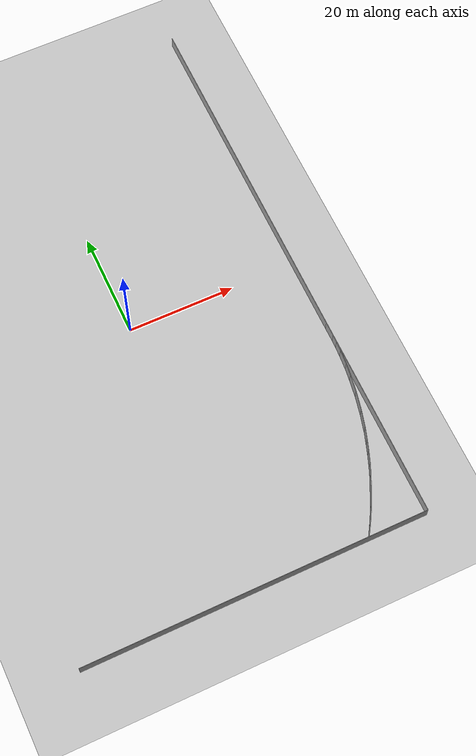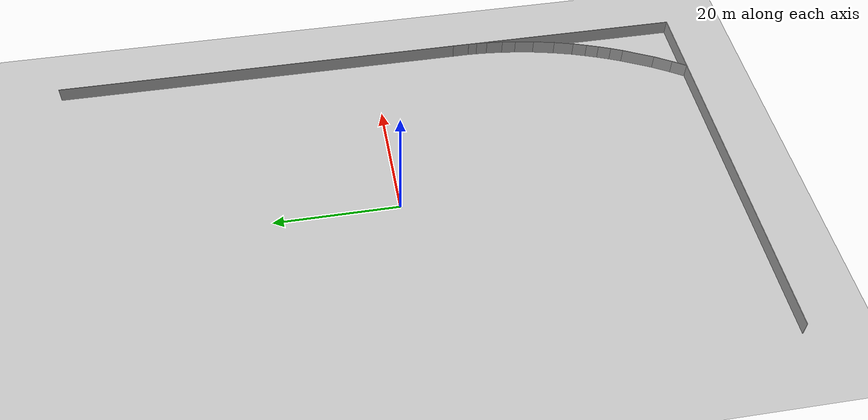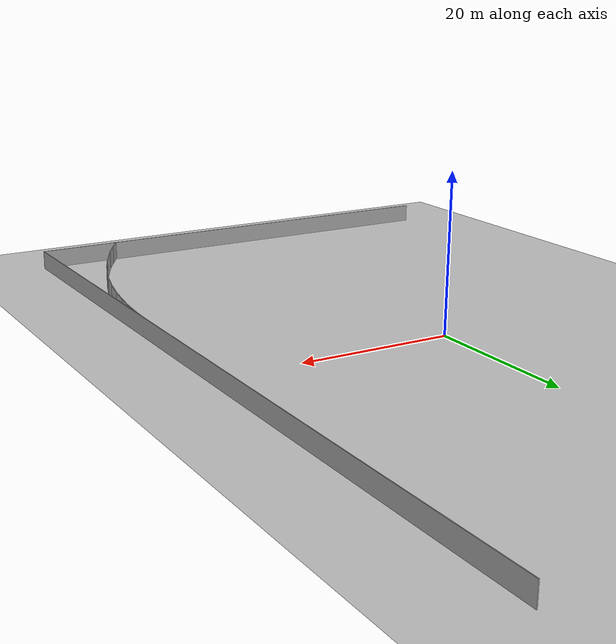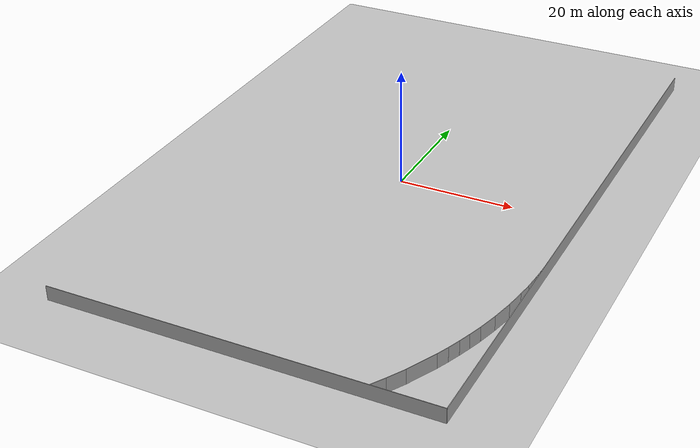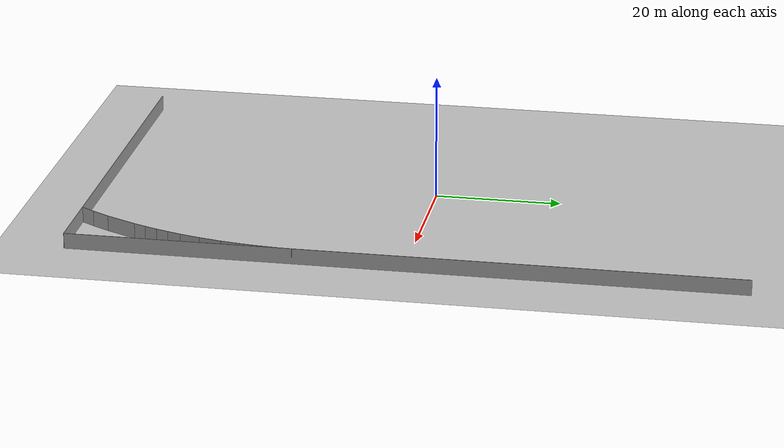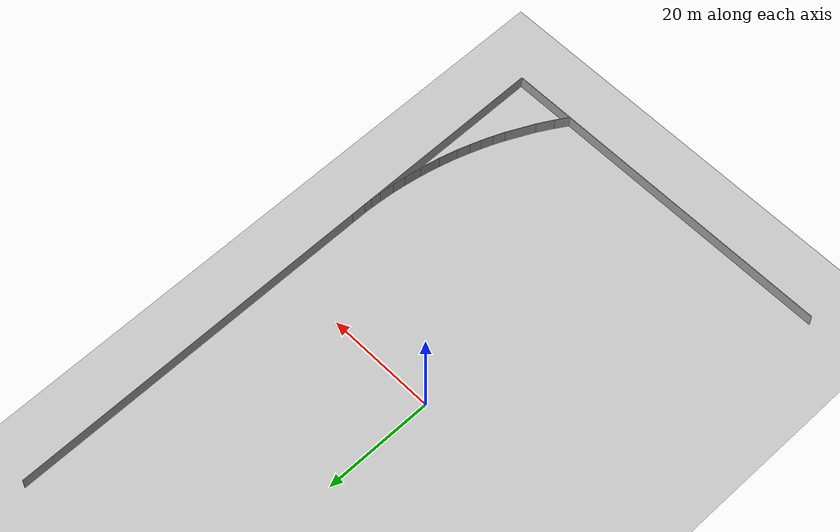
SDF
<sdf version="1.6">
 <world name="default">
  <model name="ground_plane">
   <static>1</static>
   <link name="link">
    <collision name="collision">
     <geometry><plane><normal>0 0 1</normal><size>100 100</size></plane></geometry>
     <surface><friction><ode><mu>100</mu><mu2>50</mu2></ode></friction></surface>
    </collision>
    <visual name="visual">
     <cast_shadows>0</cast_shadows>
     <geometry><plane><normal>0 0 1</normal><size>100 100</size></plane></geometry>
     <material>
      <script><uri>file://media/materials/scripts/gazebo.material</uri><name>Gazebo/Grey</name></script>
     </material>
    </visual>
   </link>
  </model>
  <model name="50041193">
   <static>1</static>
   <link name="Wall_142">
    <collision name="Wall_142_Collision">
     <geometry><box><size>2.7070551172 0.1 2.5</size></box></geometry>
     <pose>1.3535275586 0 1.25 0 0 0</pose>
    </collision>
    <visual name="Wall_142_Visual">
     <pose>1.3535275586 0 1.25 0 0 0</pose>
     <geometry><box><size>2.7070551172 0.1 2.5</size></box></geometry>
     <material>
      <script><uri>file://media/materials/scripts/gazebo.material</uri><name>Gazebo/Grey</name></script>
      <ambient>1 1 1 1</ambient>
     </material>
    </visual>
    <pose>63.4655025608 -67.4512308259 0 0 0 -1.57013908075</pose>
   </link>
   <link name="Wall_143">
    <collision name="Wall_143_Collision">
     <geometry><box><size>1.43606527306 0.1 2.5</size></box></geometry>
     <pose>0.718032636529 0 1.25 0 0 0</pose>
    </collision>
    <visual name="Wall_143_Visual">
     <pose>0.718032636529 0 1.25 0 0 0</pose>
     <geometry><box><size>1.43606527306 0.1 2.5</size></box></geometry>
     <material>
      <script><uri>file://media/materials/scripts/gazebo.material</uri><name>Gazebo/Grey</name></script>
      <ambient>1 1 1 1</ambient>
     </material>
    </visual>
    <pose>63.4672817619 -70.1582853584 0 0 0 -1.6004467759</pose>
   </link>
   <link name="Wall_144">
    <collision name="Wall_144_Collision">
     <geometry><box><size>1.79860196611 0.1 2.5</size></box></geometry>
     <pose>0.899300983056 0 1.25 0 0 0</pose>
    </collision>
    <visual name="Wall_144_Visual">
     <pose>0.899300983056 0 1.25 0 0 0</pose>
     <geometry><box><size>1.79860196611 0.1 2.5</size></box></geometry>
     <material>
      <script><uri>file://media/materials/scripts/gazebo.material</uri><name>Gazebo/Grey</name></script>
      <ambient>1 1 1 1</ambient>
     </material>
    </visual>
    <pose>63.4247080204 -71.59371942 0 0 0 -1.6286268808</pose>
   </link>
   <link name="Wall_145">
    <collision name="Wall_145_Collision">
     <geometry><box><size>2.72455289297 0.1 2.5</size></box></geometry>
     <pose>1.36227644649 0 1.25 0 0 0</pose>
    </collision>
    <visual name="Wall_145_Visual">
     <pose>1.36227644649 0 1.25 0 0 0</pose>
     <geometry><box><size>2.72455289297 0.1 2.5</size></box></geometry>
     <material>
      <script><uri>file://media/materials/scripts/gazebo.material</uri><name>Gazebo/Grey</name></script>
      <ambient>1 1 1 1</ambient>
     </material>
    </visual>
    <pose>63.3207518396 -73.3893146263 0 0 0 -1.65373225647</pose>
   </link>
   <link name="Wall_146">
    <collision name="Wall_146_Collision">
     <geometry><box><size>2.27815469353 0.1 2.5</size></box></geometry>
     <pose>1.13907734676 0 1.25 0 0 0</pose>
    </collision>
    <visual name="Wall_146_Visual">
     <pose>1.13907734676 0 1.25 0 0 0</pose>
     <geometry><box><size>2.27815469353 0.1 2.5</size></box></geometry>
     <material>
      <script><uri>file://media/materials/scripts/gazebo.material</uri><name>Gazebo/Grey</name></script>
      <ambient>1 1 1 1</ambient>
     </material>
    </visual>
    <pose>63.0950474665 -76.1045026497 0 0 0 -1.70496985191</pose>
   </link>
   <link name="Wall_147">
    <collision name="Wall_147_Collision">
     <geometry><box><size>3.17766332014 0.1 2.5</size></box></geometry>
     <pose>1.58883166007 0 1.25 0 0 0</pose>
    </collision>
    <visual name="Wall_147_Visual">
     <pose>1.58883166007 0 1.25 0 0 0</pose>
     <geometry><box><size>3.17766332014 0.1 2.5</size></box></geometry>
     <material>
      <script><uri>file://media/materials/scripts/gazebo.material</uri><name>Gazebo/Grey</name></script>
      <ambient>1 1 1 1</ambient>
     </material>
    </visual>
    <pose>62.7902957286 -78.3621818089 0 0 0 -1.72793670669</pose>
   </link>
   <link name="Wall_148">
    <collision name="Wall_148_Collision">
     <geometry><box><size>3.61397986703 0.1 2.5</size></box></geometry>
     <pose>1.80698993351 0 1.25 0 0 0</pose>
    </collision>
    <visual name="Wall_148_Visual">
     <pose>1.80698993351 0 1.25 0 0 0</pose>
     <geometry><box><size>3.61397986703 0.1 2.5</size></box></geometry>
     <material>
      <script><uri>file://media/materials/scripts/gazebo.material</uri><name>Gazebo/Grey</name></script>
      <ambient>1 1 1 1</ambient>
     </material>
    </visual>
    <pose>62.2930090104 -81.5006926176 0 0 0 -1.78539933963</pose>
   </link>
   <link name="Wall_149">
    <collision name="Wall_149_Collision">
     <geometry><box><size>3.30121283131 0.1 2.5</size></box></geometry>
     <pose>1.65060641566 0 1.25 0 0 0</pose>
    </collision>
    <visual name="Wall_149_Visual">
     <pose>1.65060641566 0 1.25 0 0 0</pose>
     <geometry><box><size>3.30121283131 0.1 2.5</size></box></geometry>
     <material>
      <script><uri>file://media/materials/scripts/gazebo.material</uri><name>Gazebo/Grey</name></script>
      <ambient>1 1 1 1</ambient>
     </material>
    </visual>
    <pose>61.5233774321 -85.0317714489 0 0 0 -1.8335065419</pose>
   </link>
   <link name="Wall_150">
    <collision name="Wall_150_Collision">
     <geometry><box><size>2.30141539988 0.1 2.5</size></box></geometry>
     <pose>1.15070769994 0 1.25 0 0 0</pose>
    </collision>
    <visual name="Wall_150_Visual">
     <pose>1.15070769994 0 1.25 0 0 0</pose>
     <geometry><box><size>2.30141539988 0.1 2.5</size></box></geometry>
     <material>
      <script><uri>file://media/materials/scripts/gazebo.material</uri><name>Gazebo/Grey</name></script>
      <ambient>1 1 1 1</ambient>
     </material>
    </visual>
    <pose>60.6660566548 -88.219718632 0 0 0 -1.89024185262</pose>
   </link>
   <link name="Wall_151">
    <collision name="Wall_151_Collision">
     <geometry><box><size>2.05444864651 0.1 2.5</size></box></geometry>
     <pose>1.02722432325 0 1.25 0 0 0</pose>
    </collision>
    <visual name="Wall_151_Visual">
     <pose>1.02722432325 0 1.25 0 0 0</pose>
     <geometry><box><size>2.05444864651 0.1 2.5</size></box></geometry>
     <material>
      <script><uri>file://media/materials/scripts/gazebo.material</uri><name>Gazebo/Grey</name></script>
      <ambient>1 1 1 1</ambient>
     </material>
    </visual>
    <pose>59.9433197352 -90.4047047162 0 0 0 -1.90770760939</pose>
   </link>
   <link name="Wall_152">
    <collision name="Wall_152_Collision">
     <geometry><box><size>2.14236885192 0.1 2.5</size></box></geometry>
     <pose>1.07118442596 0 1.25 0 0 0</pose>
    </collision>
    <visual name="Wall_152_Visual">
     <pose>1.07118442596 0 1.25 0 0 0</pose>
     <geometry><box><size>2.14236885192 0.1 2.5</size></box></geometry>
     <material>
      <script><uri>file://media/materials/scripts/gazebo.material</uri><name>Gazebo/Grey</name></script>
      <ambient>1 1 1 1</ambient>
     </material>
    </visual>
    <pose>59.2641732434 -92.3436526999 0 0 0 -1.93780832075</pose>
   </link>
   <link name="Wall_153">
    <collision name="Wall_153_Collision">
     <geometry><box><size>2.0837422498 0.1 2.5</size></box></geometry>
     <pose>1.0418711249 0 1.25 0 0 0</pose>
    </collision>
    <visual name="Wall_153_Visual">
     <pose>1.0418711249 0 1.25 0 0 0</pose>
     <geometry><box><size>2.0837422498 0.1 2.5</size></box></geometry>
     <material>
      <script><uri>file://media/materials/scripts/gazebo.material</uri><name>Gazebo/Grey</name></script>
      <ambient>1 1 1 1</ambient>
     </material>
    </visual>
    <pose>58.4954312656 -94.343347694 0 0 0 -1.97205234789</pose>
   </link>
   <link name="Wall_154">
    <collision name="Wall_154_Collision">
     <geometry><box><size>5.40483262819 0.1 2.5</size></box></geometry>
     <pose>2.7024163141 0 1.25 0 0 0</pose>
    </collision>
    <visual name="Wall_154_Visual">
     <pose>2.7024163141 0 1.25 0 0 0</pose>
     <geometry><box><size>5.40483262819 0.1 2.5</size></box></geometry>
     <material>
      <script><uri>file://media/materials/scripts/gazebo.material</uri><name>Gazebo/Grey</name></script>
      <ambient>1 1 1 1</ambient>
     </material>
    </visual>
    <pose>57.6815738305 -96.2615806931 0 0 0 -2.02252959701</pose>
   </link>
   <link name="Wall_155">
    <collision name="Wall_155_Collision">
     <geometry><box><size>3.17290871656 0.1 2.5</size></box></geometry>
     <pose>1.58645435828 0 1.25 0 0 0</pose>
    </collision>
    <visual name="Wall_155_Visual">
     <pose>1.58645435828 0 1.25 0 0 0</pose>
     <geometry><box><size>3.17290871656 0.1 2.5</size></box></geometry>
     <material>
      <script><uri>file://media/materials/scripts/gazebo.material</uri><name>Gazebo/Grey</name></script>
      <ambient>1 1 1 1</ambient>
     </material>
    </visual>
    <pose>55.3222260348 -101.124264491 0 0 0 -2.09405596771</pose>
   </link>
   <link name="Wall_156">
    <collision name="Wall_156_Collision">
     <geometry><box><size>2.54547947244 0.1 2.5</size></box></geometry>
     <pose>1.27273973622 0 1.25 0 0 0</pose>
    </collision>
    <visual name="Wall_156_Visual">
     <pose>1.27273973622 0 1.25 0 0 0</pose>
     <geometry><box><size>2.54547947244 0.1 2.5</size></box></geometry>
     <material>
      <script><uri>file://media/materials/scripts/gazebo.material</uri><name>Gazebo/Grey</name></script>
      <ambient>1 1 1 1</ambient>
     </material>
    </visual>
    <pose>53.7367036486 -103.872621907 0 0 0 -2.12959145181</pose>
   </link>
   <link name="Wall_332">
    <collision name="Wall_332_Collision">
     <geometry><box><size>106.030919974 0.1 2.5</size></box></geometry>
     <pose>53.015459987 0 1.25 0 0 0</pose>
    </collision>
    <visual name="Wall_332_Visual">
     <pose>53.015459987 0 1.25 0 0 0</pose>
     <geometry><box><size>106.030919974 0.1 2.5</size></box></geometry>
     <material>
      <script><uri>file://media/materials/scripts/gazebo.material</uri><name>Gazebo/Grey</name></script>
      <ambient>1 1 1 1</ambient>
     </material>
    </visual>
    <pose>63.4672817619 -106.030919974 0 0 0 1.57079632679</pose>
   </link>
   <link name="Wall_333">
    <collision name="Wall_333_Collision">
     <geometry><box><size>63.4672817619 0.1 2.5</size></box></geometry>
     <pose>31.733640881 0 1.25 0 0 0</pose>
    </collision>
    <visual name="Wall_333_Visual">
     <pose>31.733640881 0 1.25 0 0 0</pose>
     <geometry><box><size>63.4672817619 0.1 2.5</size></box></geometry>
     <material>
      <script><uri>file://media/materials/scripts/gazebo.material</uri><name>Gazebo/Grey</name></script>
      <ambient>1 1 1 1</ambient>
     </material>
    </visual>
    <pose>63.4672817619 -106.030919974 0 0 0 3.14159265359</pose>
   </link>
   <pose>-31.7 53.0309199741 0 0 0 0</pose>
  </model>
 </world>
</sdf>
